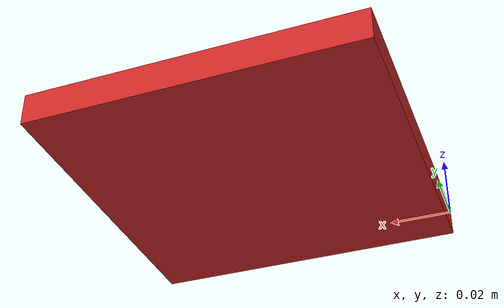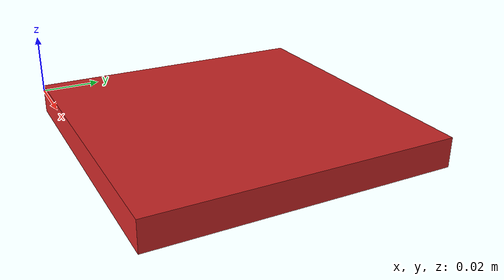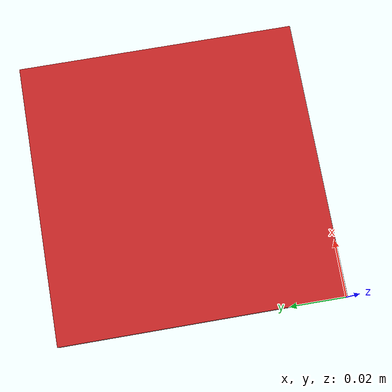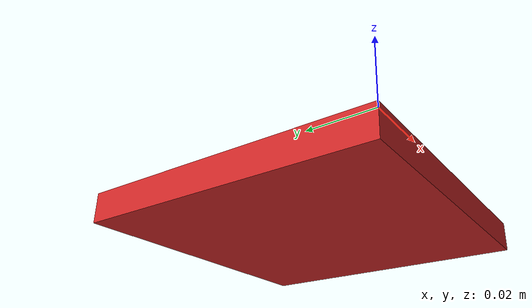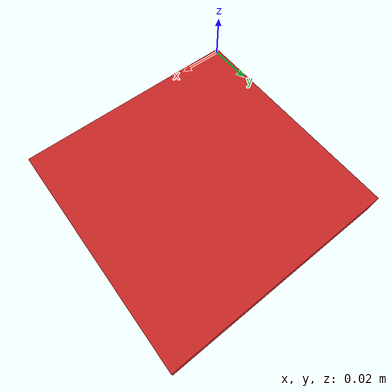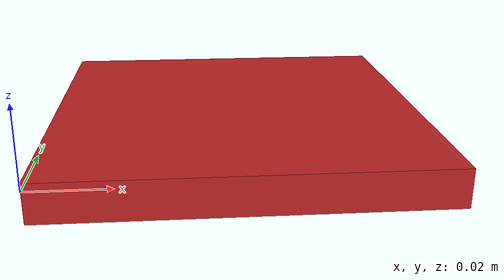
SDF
<?xml version="1.0" ?>
<sdf version="1.5">
  <model name="rettangolo_142">
    <static>true</static>
    <link name="link">
      <visual name="visual_top">
        <pose> 0 0 -0.008 0 0 0 </pose>
        <geometry>
          <mesh>
            <scale> 0.001 0.001 0.0000625</scale>
            <uri>model://rettangolo_142/meshes/rettangolo_142.STL</uri>
          </mesh>
        </geometry>
        <material>
          <lighting>1</lighting>
          <script>
            <uri>file://media/materials/scripts/gazebo.material</uri>
            <name>Gazebo/Red</name>
          </script>

          <shader type='vertex'>
            <normal_map>__default__</normal_map>
          </shader>
        </material>
      </visual>
    </link>
  </model>
</sdf>
